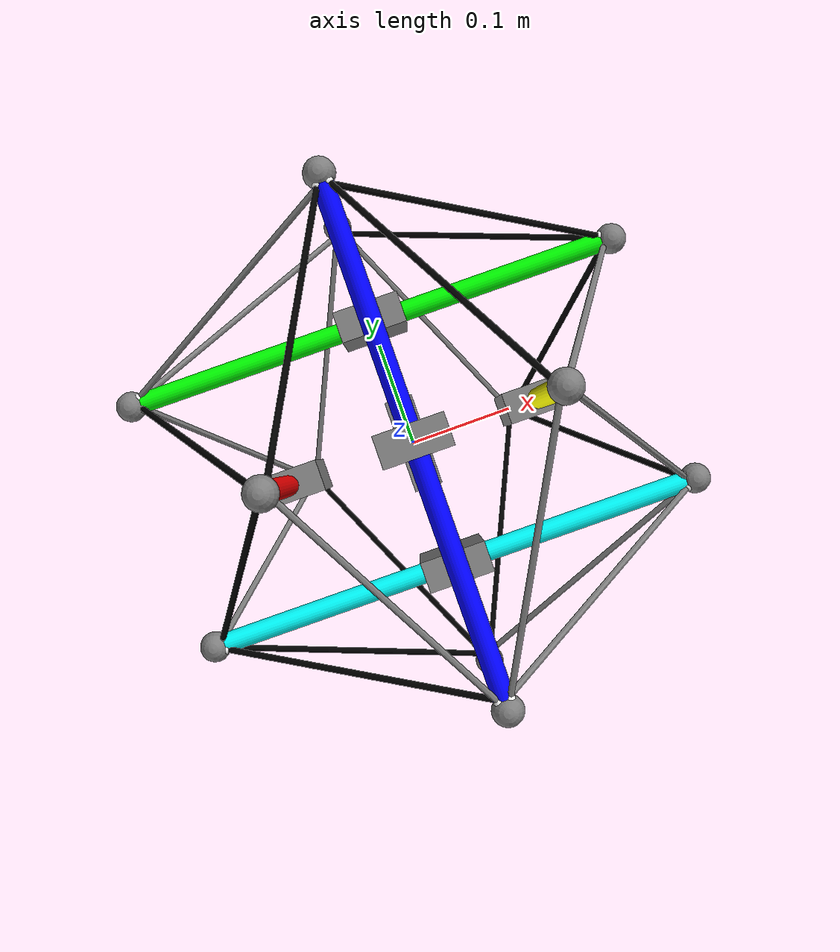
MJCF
<mujoco model="tensegrity">
  <option timestep="0.002" collision="predefined"/>
  <default>
    <site size="0.005" rgba="1 1 1 1"/>
    <default class="tendon_actuator">
      <general ctrllimited="true" ctrlrange="-20.0 0" dyntype="filter" dynprm="0.02"/> <!-- for real2sim -->
    </default>
    <default class="tendon_spatial">
      <tendon damping="5" stiffness="500" frictionloss="0.5"/>
    </default>
    <default class="tendon_spatial_static">
      <tendon damping="5" stiffness="500" frictionloss="0.5"/>
    </default>
  </default>
  <worldbody>
    <light pos="0 1 1" dir="0 -1 -1" diffuse="1 1 1"/>

      <!-- link -->
    <body name="link1" pos="-0.125 0 0">
      <geom name="link1" type="cylinder" size="0.01 0.25" mass="0.06" rgba="1 0 0 1" pos="0 0 0"/>
      <geom name="actuator1" type="box" size="0.032 0.015 0.05" mass="0.2" pos="0 0 0"/>
      <geom name="sphere_1t" type="sphere" size="0.015" mass="0.05" pos="0.0 0.0 0.25"/>
      <geom name="sphere_1b" type="sphere" size="0.015" mass="0.05" pos="0.0 0.0 -0.25"/>
      <joint name="link1" type="free"/>
      <site name="link1_top" pos="0 0 0.2"/>
      <site name="link1_top1" pos="0.005 0.005 0.24"/>
      <site name="link1_top2" pos="-0.005 0.005 0.24"/>
      <site name="link1_top3" pos="-0.005 -0.005 0.24"/>
      <site name="link1_top4" pos="0.005 -0.005 0.24"/>
      <site name="link1_bottom1" pos="0.005 0.005 -0.24"/>
      <site name="link1_bottom2" pos="-0.005 0.005 -0.24"/>
      <site name="link1_bottom3" pos="-0.005 -0.005 -0.24"/>
      <site name="link1_bottom4" pos="0.005 -0.005 -0.24"/>
      <site name="imu" pos="0.0 0 0"/>
    </body>

    <body name="link2" pos="0.125 0 0">
      <geom name="link2" type="cylinder" size="0.01 0.25" mass="0.06" rgba="1 1 0 1" pos="0 0 0"/>
        <geom name="actuator2" type="box" size="0.032 0.015 0.05" mass="0.2" pos="0 0 0"/>
        <geom name="sphere_2t" type="sphere" size="0.015" mass="0.05" pos="0.0 0.0 0.25"/>
        <geom name="sphere_2b" type="sphere" size="0.015" mass="0.05" pos="0.0 0.0 -0.25"/>
      <joint name="link2" type="free"/>
      <site name="link2_top1" pos="0.005 0.005 0.24"/>
      <site name="link2_top2" pos="-0.005 0.005 0.24"/>
      <site name="link2_top3" pos="-0.005 -0.005 0.24"/>
      <site name="link2_top4" pos="0.005 -0.005 0.24"/>
      <site name="link2_bottom1" pos="0.005 0.005 -0.24"/>
      <site name="link2_bottom2" pos="-0.005 0.005 -0.24"/>
      <site name="link2_bottom3" pos="-0.005 -0.005 -0.24"/>
      <site name="link2_bottom4" pos="0.005 -0.005 -0.24"/>
    </body>

    <body name="link3" pos="0 0.125 0">
      <geom name="link3" type="cylinder" mass="0.06" rgba="0 1 0 1" fromto="-0.25 0 0 0.25 0 0" size="0.01 0.25"/>
        <geom name="actuator3" type="box" size="0.032 0.015 0.05" mass="0.2" pos="0 0 0"/>
        <geom name="sphere_3t" type="sphere" size="0.015" mass="0.05" pos="0.25 0.0 0.0"/>
        <geom name="sphere_3b" type="sphere" size="0.015" mass="0.05" pos="-0.25 0.0 0.0"/>
      <joint name="link3" type="free"/>
      <site name="link3_top1" pos="0.24 0.005 0.005"/>
      <site name="link3_top2" pos="0.24 -0.005 0.005"/>
      <site name="link3_top3" pos="0.24 -0.005 -0.005"/>
      <site name="link3_top4" pos="0.24 0.005 -0.005"/>
      <site name="link3_bottom1" pos="-0.24 0.005 0.005"/>
      <site name="link3_bottom2" pos="-0.24 -0.005 0.005"/>
      <site name="link3_bottom3" pos="-0.24 -0.005 -0.005"/>
      <site name="link3_bottom4" pos="-0.24 0.005 -0.005"/>
    </body>

    <body name="link4" pos="0 -0.125 0">
      <geom name="link4" type="cylinder" size="0.01 0.25" mass="0.06" rgba="0 1 1 1" fromto="-0.25 0 0 0.25 0 0"/>
        <geom name="actuator4" type="box" size="0.032 0.015 0.05" mass="0.2" pos="0 0 0"/>
        <geom name="sphere_4t" type="sphere" size="0.015" mass="0.05" pos="0.25 0.0 0.0"/>
        <geom name="sphere_4b" type="sphere" size="0.015" mass="0.05" pos="-0.25 0.0 0.0"/>
      <joint name="link4" type="free"/>
      <site name="link4_top1" pos="0.24 0.005 0.005"/>
      <site name="link4_top2" pos="0.24 -0.005 0.005"/>
      <site name="link4_top3" pos="0.24 -0.005 -0.005"/>
      <site name="link4_top4" pos="0.24 0.005 -0.005"/>
      <site name="link4_bottom1" pos="-0.24 0.005 0.005"/>
      <site name="link4_bottom2" pos="-0.24 -0.005 0.005"/>
      <site name="link4_bottom3" pos="-0.24 -0.005 -0.005"/>
      <site name="link4_bottom4" pos="-0.24 0.005 -0.005"/>
    </body>

    <body name="link5" pos="0 0 0.125">
      <geom name="link5" type="cylinder" size="0.01 0.25" mass="0.06" rgba="0 0 1 1" fromto="0 -0.25 0 0 0.25 0"/>
        <geom name="actuator5" type="box" size="0.032 0.015 0.05" mass="0.2" pos="0 0 0"/>
        <geom name="sphere_5t" type="sphere" size="0.015" mass="0.05" pos="0.0 0.25 0.0"/>
        <geom name="sphere_5b" type="sphere" size="0.015" mass="0.05" pos="0.0 -0.25 0.0"/>
      <joint name="link5" type="free"/>
      <site name="link5_top1" pos="0.005 0.24 0.005"/>
      <site name="link5_top2" pos="0.005 0.24 -0.005"/>
      <site name="link5_top3" pos="-0.005 0.24 -0.005"/>
      <site name="link5_top4" pos="-0.005 0.24 0.005"/>
      <site name="link5_bottom1" pos="0.005 -0.24 0.005"/>
      <site name="link5_bottom2" pos="0.005 -0.24 -0.005"/>
      <site name="link5_bottom3" pos="-0.005 -0.24 -0.005"/>
      <site name="link5_bottom4" pos="-0.005 -0.24 0.005"/>
    </body>

    <body name="link6" pos="0 0 -0.125">
      <geom name="link6" type="cylinder" size="0.01 0.25" mass="0.1" rgba="1 0 1 1" fromto="0 -0.25 0 0 0.25 0"/>
      <geom name="actuator6" type="box" size="0.015 0.05 0.032" mass="0.2" pos="0 0 0"/>
      <geom name="sphere_6t" type="sphere" size="0.015" mass="0.05" pos="0.0 0.25 0.0"/>
      <geom name="sphere_6b" type="sphere" size="0.015" mass="0.05" pos="0.0 -0.25 0.0"/>
      <joint name="link6" type="free"/>
      <site name="link6_top" pos="0.0 0.24 0.0"/>
      <site name="link6_top1" pos="0.005 0.24 0.005"/>
      <site name="link6_top2" pos="0.005 0.24 -0.005"/>
      <site name="link6_top3" pos="-0.005 0.24 -0.005"/>
      <site name="link6_top4" pos="-0.005 0.24 0.005"/>
      <site name="link6_bottom" pos="0.0 -0.24 0.0"/>
      <site name="link6_bottom1" pos="0.005 -0.24 0.005"/>
      <site name="link6_bottom2" pos="0.005 -0.24 -0.005"/>
      <site name="link6_bottom3" pos="-0.005 -0.24 -0.005"/>
      <site name="link6_bottom4" pos="-0.005 -0.24 0.005"/>
    </body>

  </worldbody>

  <tendon>
    <!-- link1 -->
    <spatial name="link1t_3b" class="tendon_spatial" rgba="0 0 0 1">
      <site site="link1_top2"/>
      <site site="link3_bottom2"/>
    </spatial>
    <spatial name="link1t_4b" class="tendon_spatial" rgba="0 0 0 1">
      <site site="link1_top3"/>
      <site site="link4_bottom1"/>
    </spatial>
    <spatial name="link1b_3b" class="tendon_spatial_static">
      <site site="link1_bottom2"/>
      <site site="link3_bottom3"/>
    </spatial>
    <spatial name="link1b_4b" class="tendon_spatial_static">
      <site site="link1_bottom3"/>
      <site site="link4_bottom4"/>
    </spatial>
    <spatial name="link1b_6t" class="tendon_spatial_static">
      <site site="link1_bottom1"/>
      <site site="link6_top3"/>
    </spatial>
    <spatial name="link1b_6b" class="tendon_spatial" rgba="0 0 0 1">
      <site site="link1_bottom4"/>
      <site site="link6_bottom3"/>
    </spatial>
    <spatial name="link1t_5t" class="tendon_spatial" rgba="0 0 0 1">
      <site site="link1_top1"/>
      <site site="link5_top4"/>
    </spatial>
    <spatial name="link1t_5b" class="tendon_spatial_static">
      <site site="link1_top4"/>
      <site site="link5_bottom4"/>
    </spatial>

    <!-- link2 -->
    <spatial name="link2t_3t" class="tendon_spatial_static">
      <site site="link2_top1"/>
      <site site="link3_top2"/>
    </spatial>
    <spatial name="link2t_4t" class="tendon_spatial_static">
      <site site="link2_top4"/>
      <site site="link4_top1"/>
    </spatial>
    <spatial name="link2b_3t" class="tendon_spatial" rgba="0 0 0 1">
      <site site="link2_bottom1"/>
      <site site="link3_top3"/>
    </spatial>
    <spatial name="link2b_4t" class="tendon_spatial" rgba="0 0 0 1">
      <site site="link2_bottom4"/>
      <site site="link4_top4"/>
    </spatial>
    <spatial name="link2b_6t" class="tendon_spatial_static">
      <site site="link2_bottom2"/>
      <site site="link6_top2"/>
    </spatial>
    <spatial name="link2b_6b" class="tendon_spatial" rgba="0 0 0 1">
      <site site="link2_bottom3"/>
      <site site="link6_bottom2"/>
    </spatial>
    <spatial name="link2t_5t" class="tendon_spatial" rgba="0 0 0 1">
      <site site="link2_top2"/>
      <site site="link5_top1"/>
    </spatial>
    <spatial name="link2t_5b" class="tendon_spatial_static">
      <site site="link2_top3"/>
      <site site="link5_bottom1"/>
    </spatial>

    <!-- link3 -->
    <spatial name="link3t_5t" class="tendon_spatial" rgba="0 0 0 1">
      <site site="link3_top1"/>
      <site site="link5_top2"/>
    </spatial>
    <spatial name="link3b_5t" class="tendon_spatial_static">
      <site site="link3_bottom1"/>
      <site site="link5_top3"/>
    </spatial>
    <spatial name="link3t_6t" class="tendon_spatial" rgba="0 0 0 1">
      <site site="link3_top4"/>
      <site site="link6_top1"/>
    </spatial>
    <spatial name="link3b_6t" class="tendon_spatial_static">
      <site site="link3_bottom4"/>
      <site site="link6_top4"/>
    </spatial>

    <!-- link4 -->
    <spatial name="link4t_5b" class="tendon_spatial_static">
      <site site="link4_top2"/>
      <site site="link5_bottom2"/>
    </spatial>
    <spatial name="link4b_5b" class="tendon_spatial" rgba="0 0 0 1">
      <site site="link4_bottom2"/>
      <site site="link5_bottom3"/>
    </spatial>
    <spatial name="link4t_6b" class="tendon_spatial_static">
      <site site="link4_top3"/>
      <site site="link6_bottom1"/>
    </spatial>
    <spatial name="link4b_6b" class="tendon_spatial" rgba="0 0 0 1">
      <site site="link4_bottom3"/>
      <site site="link6_bottom4"/>
    </spatial>
  </tendon>

  <actuator>
    <!-- tention-controlled actuators-->
    <general name="link1t_3b" tendon="link1t_3b"  class="tendon_actuator"/>
    <general name="link1b_4b" tendon="link1t_4b"  class="tendon_actuator"/>
    <general name="link1b_6t" tendon="link1b_6b"  class="tendon_actuator"/>
    <general name="link1t_5b" tendon="link1t_5t"  class="tendon_actuator"/>
    <general name="link2t_4t" tendon="link2b_4t"  class="tendon_actuator"/>
    <general name="link2b_3t" tendon="link2b_3t"  class="tendon_actuator"/>
    <general name="link2b_6b" tendon="link2b_6b"  class="tendon_actuator"/>
    <general name="link2t_5t" tendon="link2t_5t"  class="tendon_actuator"/>
    <general name="link3b_5t" tendon="link3t_5t"  class="tendon_actuator"/>
    <general name="link3t_6t" tendon="link3t_6t"  class="tendon_actuator"/>
    <general name="link4b_5b" tendon="link4b_5b"  class="tendon_actuator"/>
    <general name="link4t_6b" tendon="link4b_6b"  class="tendon_actuator"/>

  </actuator>

  <sensor>
    <tendonpos name="link1t_3b_sensor" tendon="link1t_3b"/>
    <tendonpos name="link1b_4b_sensor" tendon="link1t_4b"/>
    <tendonpos name="link1b_6t_sensor" tendon="link1b_6b"/>
    <tendonpos name="link1t_5b_sensor" tendon="link1t_5t"/>
    <tendonpos name="link2t_4t_sensor" tendon="link2b_4t"/>
    <tendonpos name="link2b_3t_sensor" tendon="link2b_3t"/>
    <tendonpos name="link2b_6b_sensor" tendon="link2b_6b"/>
    <tendonpos name="link2t_5t_sensor" tendon="link2t_5t"/>
    <tendonpos name="link3b_5t_sensor" tendon="link3t_5t"/>
    <tendonpos name="link3t_6t_sensor" tendon="link3t_6t"/>
    <tendonpos name="link4b_5b_sensor" tendon="link4b_5b"/>
    <tendonpos name="link4t_6b_sensor" tendon="link4b_6b"/>
  </sensor>

</mujoco>
